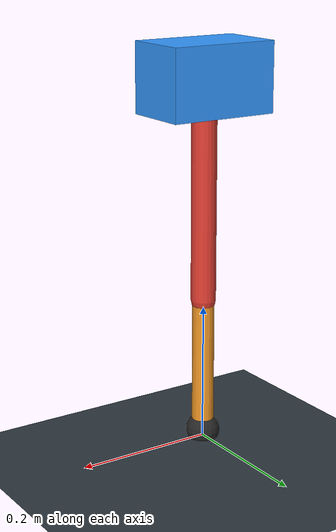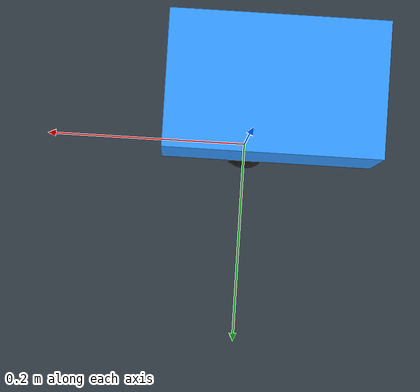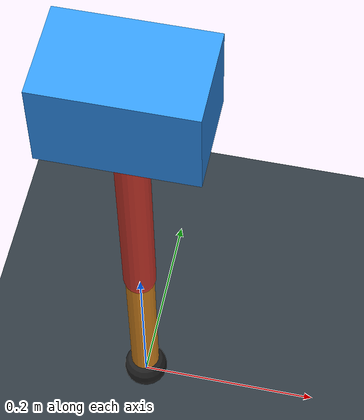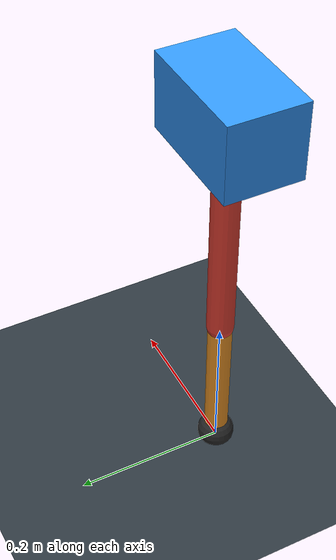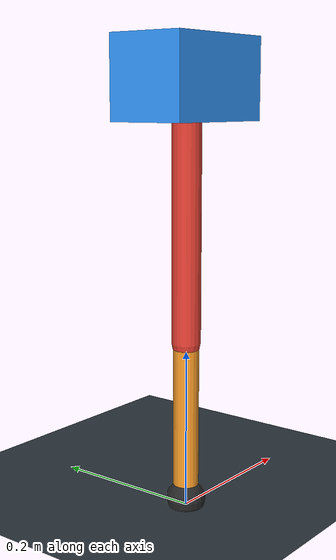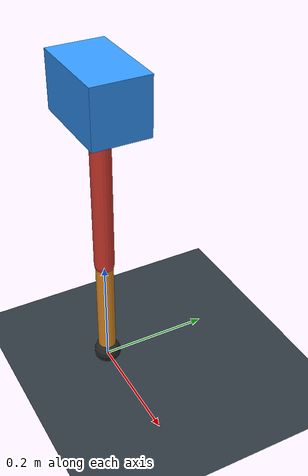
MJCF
<mujoco model="single_axis_two_bar">
  <compiler angle="radian" inertiafromgeom="true"/>
  <option timestep="0.001" integrator="implicitfast" gravity="0 0 -9.81"/>
  <default>
    <joint damping="0.08"/>
    <geom friction="1.2 0.01 0.0001" condim="3"/>
  </default>
  <worldbody>
    <geom name="floor" type="plane" size="5 5 0.1" rgba="0.18 0.22 0.25 1"/>
    <body name="carriage" pos="0 0 0.5311468708716564">
      <joint name="pole_slide" type="slide" axis="0 0 1"/>
      <geom name="payload" type="box" size="0.08 0.05 0.05" mass="2.536910769929146" rgba="0.2 0.6 1 1"/>
      <body name="thigh" pos="0 0 0">
        <joint name="hip" type="hinge" axis="0 1 0"/>
        <geom name="thigh_link" type="capsule" fromto="0 0 0 0 0 -0.31989385071323556" size="0.018" mass="0.22792859565747406" rgba="0.9 0.25 0.2 1"/>
        <body name="shank" pos="0 0 -0.31989385071323556">
          <joint name="knee" type="hinge" axis="0 1 0"/>
          <geom name="shank_link" type="capsule" fromto="0 0 0 0 0 -0.20190704709259577" size="0.016" mass="0.14386143901971152" rgba="0.95 0.6 0.15 1"/>
          <geom name="foot" type="sphere" pos="0 0 -0.20190704709259577" size="0.025" mass="0.03" rgba="0.15 0.15 0.15 1"/>
          <site name="toe" pos="0 0 -0.20190704709259577" size="0.008"/>
        </body>
      </body>
    </body>
  </worldbody>
  <actuator>
    <motor name="hip_motor" joint="hip" ctrlrange="-18.259572301662228 18.259572301662228"/>
    <motor name="knee_motor" joint="knee" ctrlrange="-82.68617335720124 82.68617335720124"/>
  </actuator>
</mujoco>
